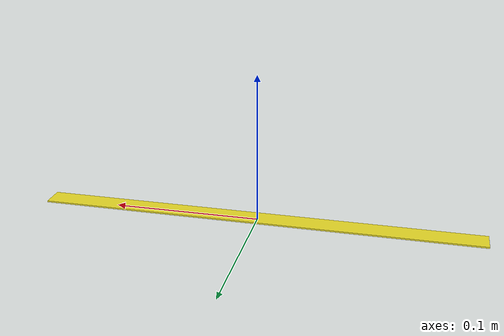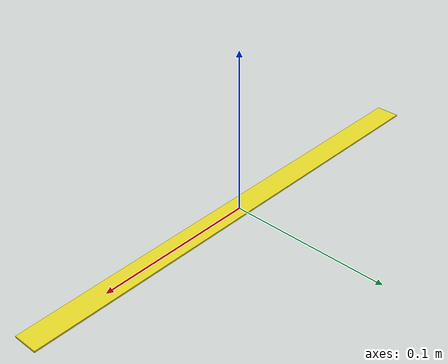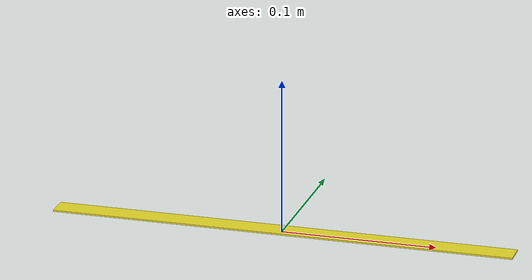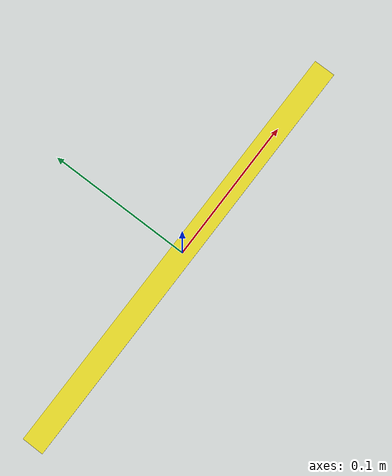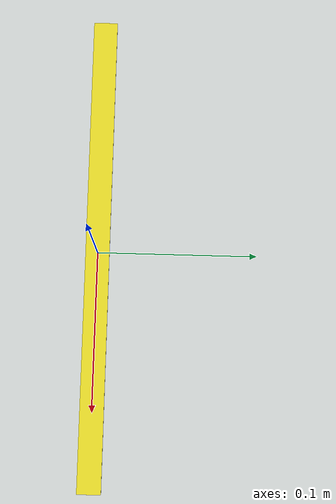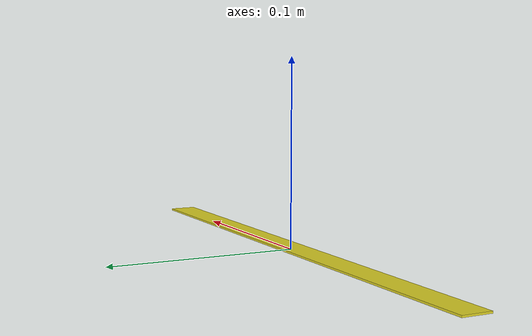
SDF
<?xml version='1.0'?>
<sdf version='1.6'>
  <model name='RedLine30cm'>
    <model name='YellowLine30cm'>
      <link name='link_0'>
        <pose frame=''>0 0 0.001 0 -0 0</pose>
        <inertial>
          <mass>1</mass>
          <inertia>
            <ixx>0.166667</ixx>
            <ixy>0</ixy>
            <ixz>0</ixz>
            <iyy>0.166667</iyy>
            <iyz>0</iyz>
            <izz>0.166667</izz>
          </inertia>
          <pose frame=''>0 0 0 0 -0 0</pose>
        </inertial>
        <self_collide>0</self_collide>
        <kinematic>0</kinematic>
        <gravity>1</gravity>
        <visual name='visual'>
          <pose frame=''>0 0 0 0 -0 0</pose>
          <geometry>
            <box>
              <size>0.3 0.015 0.001</size>
            </box>
          </geometry>
          <material>
            <lighting>1</lighting>
            <script>
              <uri>file://media/materials/scripts/gazebo.material</uri>
              <name>Gazebo/Yellow</name>
            </script>
            <ambient>1 0 0 0</ambient>
            <diffuse>1 0 0 0</diffuse>
            <specular>0.1 0.1 0.1 1</specular>
            <shader type='vertex'>
              <normal_map>__default__</normal_map>
            </shader>
            <emissive>0 0 0 1</emissive>
          </material>
          <cast_shadows>1</cast_shadows>
          <transparency>0</transparency>
        </visual>
        <collision name='collision'>
          <laser_retro>0</laser_retro>
          <max_contacts>10</max_contacts>
          <pose frame=''>0 0 0 0 -0 0</pose>
          <geometry>
            <box>
              <size>0.3 0.015 0.001</size>
            </box>
          </geometry>
          <surface>
            <friction>
              <ode>
                <mu>1</mu>
                <mu2>1</mu2>
                <fdir1>0 0 0</fdir1>
                <slip1>0</slip1>
                <slip2>0</slip2>
              </ode>
              <torsional>
                <coefficient>1</coefficient>
                <patch_radius>0</patch_radius>
                <surface_radius>0</surface_radius>
                <use_patch_radius>1</use_patch_radius>
                <ode>
                  <slip>0</slip>
                </ode>
              </torsional>
            </friction>
            <bounce>
              <restitution_coefficient>0</restitution_coefficient>
              <threshold>1e+06</threshold>
            </bounce>
            <contact>
              <collide_without_contact>0</collide_without_contact>
              <collide_without_contact_bitmask>1</collide_without_contact_bitmask>
              <collide_bitmask>1</collide_bitmask>
              <ode>
                <soft_cfm>0</soft_cfm>
                <soft_erp>0.2</soft_erp>
                <kp>1e+13</kp>
                <kd>1</kd>
                <max_vel>0.01</max_vel>
                <min_depth>0</min_depth>
              </ode>
              <bullet>
                <split_impulse>1</split_impulse>
                <split_impulse_penetration_threshold>-0.01</split_impulse_penetration_threshold>
                <soft_cfm>0</soft_cfm>
                <soft_erp>0.2</soft_erp>
                <kp>1e+13</kp>
                <kd>1</kd>
              </bullet>
            </contact>
          </surface>
        </collision>
      </link>
      <static>0</static>
      <allow_auto_disable>1</allow_auto_disable>
      <pose frame=''>0 0 0 0 -0 0</pose>
    </model>
    <static>0</static>
    <allow_auto_disable>1</allow_auto_disable>
  </model>
</sdf>
